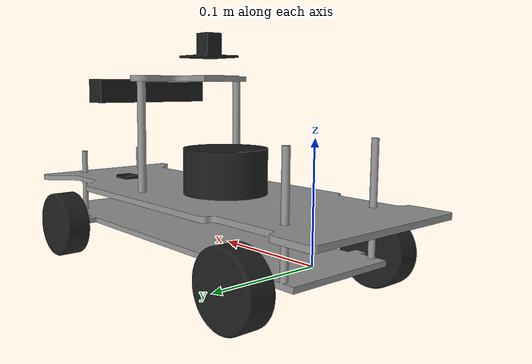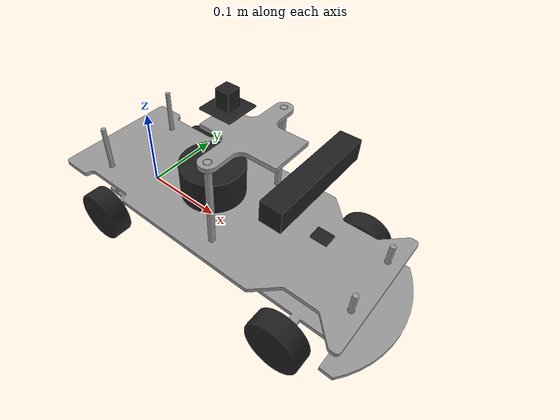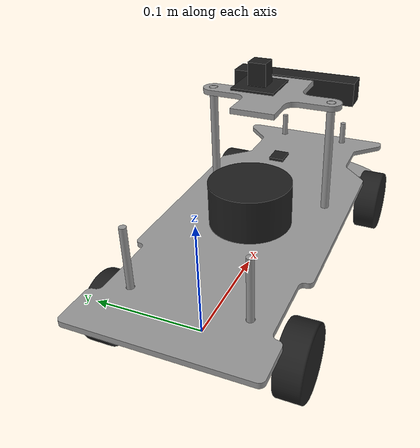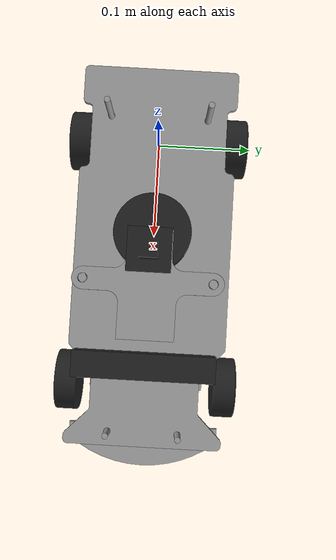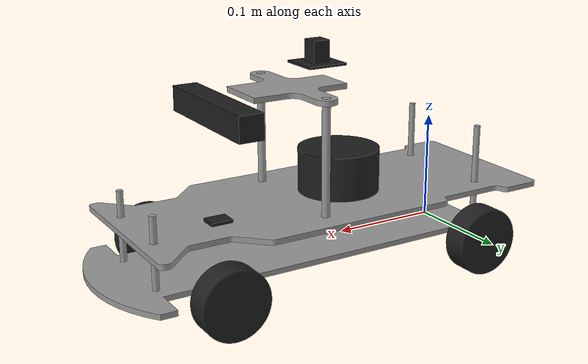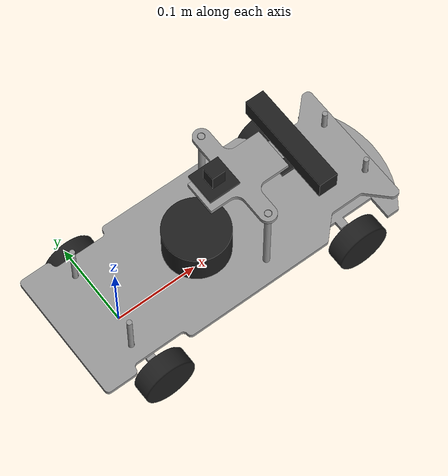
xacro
<?xml version="1.0"?>

<robot name="seat_car" xmlns:xacro="http://www.ros.org/wiki/xacro">

  <!-- Included URDF Files -->
  <xacro:include filename="$(find seat_car_description)/urdf/include/materials.xacro" />

  <xacro:include filename="$(find seat_car_description)/urdf/include/platform.xacro" />
  <xacro:include filename="$(find seat_car_description)/urdf/include/platform.gazebo" />

  <xacro:include filename="$(find seat_car_description)/urdf/include/sensors.xacro" />
  <xacro:include filename="$(find seat_car_description)/urdf/include/sensors.gazebo" />

  <!-- gazebo sensors -->
  <xacro:include filename="$(find seat_car_description)/urdf/include/sensors/imu.gazebo" />
  <xacro:include filename="$(find seat_car_description)/urdf/include/sensors/laser.gazebo" />
  <xacro:include filename="$(find seat_car_description)/urdf/include/sensors/front_rgbd_camera.gazebo" />
  <!-- only rgb, no depth-->
  <xacro:include filename="$(find seat_car_description)/urdf/include/sensors/top_camera.gazebo" />

</robot>

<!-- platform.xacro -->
<robot name="seat_car" xmlns:xacro="http://www.ros.org/wiki/xacro">

  <xacro:property name="PI" value="3.1415926535897931" />
  <xacro:property name="angle_limit" value="${PI/3.0}" />
  <xacro:property name="wheel_width" value="0.001" />

  <link name="base_link">
  </link>

  <link name="body">
    <inertial>
      <mass value="6" />
      <origin xyz="0.15971917 0.00000000 0.00197764" />
      <inertia ixx="0.0067970" ixy="0.0" ixz="-0.0008808"
               iyy="0.0784672" iyz="0.0"
               izz="0.0838770" />
    </inertial>
    <visual>
      <origin xyz="0 0 0" rpy="0 0 0" />
      <geometry>
        <mesh filename="package://seat_car_description/meshes/chassis.stl"/>
      </geometry>
      <material name="Grey" />
    </visual>
    <collision>
      <origin xyz="0 0 0" rpy="0 0 0" />
      <geometry>
        <mesh filename="package://seat_car_description/meshes/chassis.stl"/>
      </geometry>
    </collision>
  </link>

  <joint name="base_link_to_body" type="fixed">
    <origin xyz="0.0 0 0" rpy="0 0 0" />
    <parent link="base_link" />
    <child link="body" />
  </joint>

  <joint name="base_link_rear_left_wheel_joint" type="revolute">
    <origin xyz="0.0 -0.0825 0" rpy="${PI/2.0} 0 0" />
    <axis xyz="0 0 1" />
    <anchor xyz="0 0 0" />
    <parent link="base_link" />
    <child link="rear_left_wheel_link" />
    <limit lower="-1000000000000.0" upper="1000000000000.0" effort="3.0" velocity="124"/>
  </joint>

  <transmission name="tran_rear_left">
    <type>transmission_interface/SimpleTransmission</type>
    <joint name="base_link_rear_left_wheel_joint">
      <hardwareInterface>hardware_interface/EffortJointInterface</hardwareInterface>
    </joint>
    <actuator name="rear_left_motor">
      <hardwareInterface>hardware_interface/EffortJointInterface</hardwareInterface>
      <mechanicalReduction>1</mechanicalReduction>
    </actuator>
  </transmission>

  <link name="rear_left_wheel_link">
    <inertial>
      <mass value="1" />
      <origin xyz="0 0 0" rpy="0 0 0" />
      <inertia  ixx="0.0002946" ixy="0.0" ixz="0.0"
                iyy="0.0002946" iyz="0.0"
                izz="0.000494" />
    </inertial>
    <visual>
      <origin xyz="0 0 0" rpy="0 0 0" />
      <geometry>
        <mesh filename="package://seat_car_description/meshes/wheel.stl"/>
      </geometry>
      <material name="Black" />
    </visual>
    <collision>
      <origin xyz="0 0 0" rpy="0 0 0" />
      <geometry>
        <cylinder radius="0.0315" length="${wheel_width}"/>
      </geometry>
    </collision>
  </link>

  <joint name="base_link_rear_right_wheel_joint" type="revolute">
    <origin xyz="0.0 0.0825 0" rpy="-${PI/2.0} 0 0" />
    <axis xyz="0 0 1" />
    <anchor xyz="0 0 0" />
    <parent link="base_link" />
    <child link="rear_right_wheel_link" />
    <limit lower="-1000000000000.0" upper="1000000000000.0" effort="3.0" velocity="124"/>
  </joint>

  <transmission name="tran_rear_right">
    <type>transmission_interface/SimpleTransmission</type>
    <joint name="base_link_rear_right_wheel_joint">
      <hardwareInterface>hardware_interface/EffortJointInterface</hardwareInterface>
    </joint>
    <actuator name="rear_right_motor">
      <hardwareInterface>hardware_interface/EffortJointInterface</hardwareInterface>
      <mechanicalReduction>1</mechanicalReduction>
    </actuator>
  </transmission>

  <link name="rear_right_wheel_link">
    <inertial>
      <mass value="1" />
      <origin xyz="0 0 0" rpy="0 0 0" />
      <inertia  ixx="0.0002946" ixy="0.0" ixz="0.0"
                iyy="0.0002946" iyz="0.0"
                izz="0.0004940" />
    </inertial>
    <visual>
      <origin xyz="0 0 0" rpy="0 0 0" />
      <geometry>
        <mesh filename="package://seat_car_description/meshes/wheel.stl"/>
      </geometry>
      <material name="Black" />
    </visual>
    <collision>
      <origin xyz="0 0 0" rpy="0 0 0" />
      <geometry>
        <cylinder radius="0.0315" length="${wheel_width}"/>
      </geometry>
    </collision>
  </link>

  <joint name="base_link_front_left_axel_joint" type="revolute">
    <origin xyz="0.260 -0.0825 0" rpy="${PI/2.0} 0 0" />
    <axis xyz="0 1 0" />
    <anchor xyz="0 0 0" />
    <parent link="base_link" />
    <child link="front_left_axel_link" />
    <limit lower="-${angle_limit}" upper="${angle_limit}" effort="9.6" velocity="5.3"/>
    <dynamics damping="0.2"/>
  </joint>

  <transmission name="tran_front_left_axel">
    <type>transmission_interface/SimpleTransmission</type>
    <joint name="base_link_front_left_axel_joint">
      <hardwareInterface>hardware_interface/EffortJointInterface</hardwareInterface>
    </joint>
    <actuator name="front_left_axel_motor">
      <hardwareInterface>hardware_interface/EffortJointInterface</hardwareInterface>
      <mechanicalReduction>1</mechanicalReduction>
    </actuator>
  </transmission>

  <link name="front_left_axel_link">
    <inertial>
      <mass value="0.001" />
      <origin xyz="0 0 0" rpy="0 0 0" />
      <inertia  ixx="0.00001" ixy="0.0" ixz="0.0"
                iyy="0.00001" iyz="0.0"
                izz="0.00001" />
    </inertial>
  </link>

  <joint name="front_left_axel_front_left_wheel_joint" type="revolute">
    <origin xyz="0.0 0.0 0" rpy="0 0 0" />
    <axis xyz="0 0 1" />
    <anchor xyz="0 0 0" />
    <parent link="front_left_axel_link" />
    <child link="front_left_wheel_link" />
    <limit lower="-1000000000000.0" upper="1000000000000.0" effort="3.0" velocity="124"/>
  </joint>

  <transmission name="tran_front_left_wheel">
    <type>transmission_interface/SimpleTransmission</type>
    <joint name="front_left_axel_front_left_wheel_joint">
      <hardwareInterface>hardware_interface/EffortJointInterface</hardwareInterface>
    </joint>
    <actuator name="front_left_wheel_motor">
      <hardwareInterface>hardware_interface/EffortJointInterface</hardwareInterface>
      <mechanicalReduction>1</mechanicalReduction>
    </actuator>
  </transmission>

  <link name="front_left_wheel_link">
    <inertial>
      <mass value="1" />
      <origin xyz="0 0 0" rpy="0 0 0" />
      <inertia  ixx="0.0002946" ixy="0.0" ixz="0.0"
                iyy="0.0002946" iyz="0.0"
                izz="0.0004940" />
    </inertial>
    <visual>
      <origin xyz="0 0 0" rpy="0 0 0" />
      <geometry>
        <mesh filename="package://seat_car_description/meshes/wheel.stl"/>
      </geometry>
      <material name="Black" />
    </visual>
    <collision>
      <origin xyz="0 0 0" rpy="0 0 0" />
      <geometry>
        <cylinder radius="0.0315" length="${wheel_width}"/>
      </geometry>
    </collision>
  </link>

  <joint name="base_link_front_right_axel_joint" type="revolute">
    <origin xyz="0.260 0.0825 0" rpy="-${PI/2.0} 0 0" />
    <axis xyz="0 1 0" />
    <anchor xyz="0 0 0" />
    <parent link="base_link" />
    <child link="front_right_axel_link" />
    <limit lower="-${angle_limit}" upper="${angle_limit}" effort="9.6" velocity="5.3"/>
    <dynamics damping="0.2"/>
  </joint>

  <transmission name="tran_front_right_axel">
    <type>transmission_interface/SimpleTransmission</type>
    <joint name="base_link_front_right_axel_joint">
      <hardwareInterface>hardware_interface/EffortJointInterface</hardwareInterface>
    </joint>
    <actuator name="front_right_axel_motor">
      <hardwareInterface>hardware_interface/EffortJointInterface</hardwareInterface>
      <mechanicalReduction>1</mechanicalReduction>
    </actuator>
  </transmission>

  <link name="front_right_axel_link">
    <inertial>
      <mass value="0.001" />
      <origin xyz="0 0 0" rpy="0 0 0" />
      <inertia  ixx="0.00001" ixy="0.0" ixz="0.0"
                iyy="0.00001" iyz="0.0"
                izz="0.00001" />
    </inertial>
  </link>

  <joint name="front_right_axel_front_right_wheel_joint" type="continuous">
    <origin xyz="0.0 0.0 0" rpy="0 0 0" />
    <axis xyz="0 0 1" />
    <anchor xyz="0 0 0" />
    <parent link="front_right_axel_link" />
    <child link="front_right_wheel_link" />
    <limit lower="-1000000000000.0" upper="1000000000000.0" effort="3.0" velocity="124"/>
  </joint>

  <transmission name="tran_front_right_wheel">
    <type>transmission_interface/SimpleTransmission</type>
    <joint name="front_right_axel_front_right_wheel_joint">
      <hardwareInterface>hardware_interface/EffortJointInterface</hardwareInterface>
    </joint>
    <actuator name="front_right_wheel_motor">
      <hardwareInterface>hardware_interface/EffortJointInterface</hardwareInterface>
      <mechanicalReduction>1</mechanicalReduction>
    </actuator>
  </transmission>

  <link name="front_right_wheel_link">
    <inertial>
      <mass value="1" />
      <origin xyz="0 0 0" rpy="0 0 0" />
      <inertia  ixx="0.0002946" ixy="0.0" ixz="0.0"
                iyy="0.0002946" iyz="0.0"
                izz="0.0004940" />
    </inertial>
    <visual>
      <origin xyz="0 0 0" rpy="0 0 0" />
      <geometry>
        <mesh filename="package://seat_car_description/meshes/wheel.stl"/>
      </geometry>
      <material name="Black" />
    </visual>
    <collision>
      <origin xyz="0 0 0" rpy="0 0 0" />
      <geometry>
        <cylinder radius="0.0315" length="${wheel_width}"/>
      </geometry>
    </collision>
  </link>

</robot>

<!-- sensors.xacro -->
<robot name="seat_car" xmlns:xacro="http://www.ros.org/wiki/xacro">

  <!-- Included URDF Files -->

  <xacro:property name="PI" value="3.1415926535897931" />

  <link name="sensor_board">
    <inertial>
      <mass value="6" />
      <origin xyz="0.12043628 0.00000000 0.00171950" rpy="0 0 0"/>
      <inertia ixx="0.0123739" ixy="0.0" ixz="0.0003463"
               iyy="0.0711051" iyz="0.0"
               izz="0.0820107" />
    </inertial>
    <visual>
      <origin xyz="0.0 0.0 0.0" rpy="0 0 0"/>
      <geometry>
        <mesh filename="package://seat_car_description/meshes/sensor_board.stl" />
      </geometry>
      <material name="Grey" />
    </visual>
    <collision>
      <origin xyz="0.0 0.0 0.0" rpy="0 0 0"/>
      <geometry>
        <mesh filename="package://seat_car_description/meshes/sensor_board.stl" />
      </geometry>
    </collision>
  </link>

  <joint name="joint_base_link_to_sensor_board" type="fixed" >
    <parent link="base_link"/>
    <child link="sensor_board"/>
    <origin xyz="0 0 0.0415" rpy="0 0 0"/>
  </joint>

  <link name="camera_board">
    <inertial>
      <mass value="0.6000000" />
      <origin xyz="0.04901990 0.00000000 0.00000000" rpy="0 0 0"/>
      <inertia ixx="0.0003816" ixy="0.0" ixz="0.0"
               iyy="0.0003420" iyz="0.0"
               izz="0.0007211" />
    </inertial>
    <visual>
      <origin xyz="0.0 0.0 0.0" rpy="0 0 0"/>
      <geometry>
        <mesh filename="package://seat_car_description/meshes/camera_board.stl" />
      </geometry>
      <material name="Grey" />
    </visual>
    <collision>
      <origin xyz="0.0 0.0 0.0" rpy="0 0 0"/>
      <geometry>
        <mesh filename="package://seat_car_description/meshes/camera_board.stl" />
      </geometry>
    </collision>
  </link>

  <joint name="joint_sensor_board_to_camera_board" type="fixed" >
    <parent link="sensor_board"/>
    <child link="camera_board"/>
    <origin xyz="0.109 0 0.105" rpy="0 0 0"/>
  </joint>

  <!--*               Sensors                         *-->

  <!-- IMU -->
  <link name="imu">
    <inertial>
      <mass value="0.0200000" />
      <origin xyz="0.00000000 0.00000000 0.00150000" rpy="0 0 0"/>
      <inertia ixx="0.0000007" ixy="0.0" ixz="0.0"
               iyy="0.0000004" iyz="0.0"
               izz="0.0000011" />
    </inertial>
    <visual>
      <origin xyz="0 0 0" rpy="0 0 0"/>
      <geometry>
        <mesh filename="package://seat_car_description/meshes/IMU.stl" />
      </geometry>
      <material name="Black" />
    </visual>
    <collision>
      <origin xyz="0 0 0" rpy="0 0 0"/>
      <geometry>
        <mesh filename="package://seat_car_description/meshes/IMU.stl" />
      </geometry>
    </collision>
  </link>

  <joint name="joint_sensor_board_to_imu" type="fixed" >
    <parent link="sensor_board"/>
    <child link="imu"/>
    <origin xyz="0.239 0.02 0.0025" rpy="0 0 ${PI/2}"/>
  </joint>

  <!-- RP_LIDAR -->
  <link name="laser">
    <inertial>
      <mass value="1.8362923" />
      <origin xyz="0.0000000 0.0000000 -0.01040000" rpy="0 0 0"/>
      <inertia ixx="0.0009124" ixy="0.0" ixz="0.0"
               iyy="0.0009124" iyz="0.0"
               izz="0.0013154" />
    </inertial>
    <visual>
      <origin xyz="0 0 0" rpy="0 0 0"/>
      <geometry>
        <mesh filename="package://seat_car_description/meshes/RP-LIDAR.stl" />
      </geometry>
      <material name="Black" />
    </visual>
    <collision>
      <origin xyz="0 0 0" rpy="0 0 0"/>
      <geometry>
        <mesh filename="package://seat_car_description/meshes/RP-LIDAR.stl" />
      </geometry>
    </collision>
  </link>

  <joint name="joint_sensor_board_to_laser" type="fixed" >
    <parent link="sensor_board"/>
    <child link="laser"/>
    <origin xyz="0.10445 0 0.0333" rpy="0 0 -${PI}"/>
  </joint>

  <!-- top camera -->

  <link name="top_camera">
    <inertial>
      <mass value="0.1600000" />
      <origin xyz="0.00000000 0.00000000 -0.01396703" rpy="0 0 0"/>
      <inertia ixx="0.0000170" ixy="0.0" ixz="0.0"
               iyy="0.0000170" iyz="0.0"
               izz="0.0000183" />
    </inertial>
    <visual>
      <origin xyz="0 0 0" rpy="0 ${PI/2} 0"/>
      <geometry>
        <mesh filename="package://seat_car_description/meshes/gps_camera.stl" />
      </geometry>
      <material name="Black" />
    </visual>
    <collision>
      <origin xyz="0 0 0" rpy="0 ${PI/2} 0"/>
      <geometry>
        <mesh filename="package://seat_car_description/meshes/gps_camera.stl" />
      </geometry>
    </collision>
  </link>

  <joint name="joint_camera_board_to_top_camera" type="fixed" >
    <parent link="camera_board"/>
    <child link="top_camera"/>
    <origin xyz="0.019 0 0.0405" rpy="0 -${PI/2} ${PI}"/>
  </joint>

  <link name="top_camera_optical">
  </link>

  <joint name="joint_top_camera_to_top_camera_optical" type="fixed" >
    <parent link="top_camera"/>
    <child link="top_camera_optical"/>
    <origin xyz="0.0 0 0.0" rpy="-${PI/2} 0 -${PI/2}"/>
  </joint>

  <!-- front camera -->
  <xacro:property name="front_camera_name" value="camera" />

  <link name="${front_camera_name}_link">
    <inertial>
      <mass value="1.3000000" />
      <origin xyz="0.00000000 0.00000000 -0.01150000" rpy="0 0 0"/>
      <inertia ixx="0.0017500" ixy="0.0" ixz="0.0"
               iyy="0.0001146" iyz="0.0"
               izz="0.0017500" />
    </inertial>
    <visual>
      <origin xyz="0 0 0" rpy="0 0 0"/>
      <geometry>
        <mesh filename="package://seat_car_description/meshes/creative_camera.stl" />
      </geometry>
      <material name="Black" />
    </visual>
    <collision>
      <origin xyz="0 0 0" rpy="0 0 0"/>
      <geometry>
        <mesh filename="package://seat_car_description/meshes/creative_camera.stl" />
      </geometry>
    </collision>
  </link>

  <joint name="joint_camera_board_to_${front_camera_name}_link" type="fixed" >
    <parent link="camera_board"/>
    <child link="${front_camera_name}_link"/>
    <origin xyz="0.119 0 0.0" rpy="0 0 0"/>
  </joint>

  <link name="${front_camera_name}_rgb_optical_frame">
  </link>

  <joint name="joint_${front_camera_name}_link_to_${front_camera_name}_rgb_optical_frame" type="fixed" >
    <parent link="${front_camera_name}_link"/>
    <child link="${front_camera_name}_rgb_optical_frame"/>
    <origin xyz="0 0 0" rpy="-${PI/2} 0 -${PI/2}"/>
  </joint>

</robot>

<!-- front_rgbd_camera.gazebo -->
<robot>

  <property name="front_camera_name" value="camera" />
  <property name="rate" value="5.0" />

  <gazebo reference="${front_camera_name}_link">
    <material>Gazebo/Black</material>
  </gazebo>

  <gazebo reference="${front_camera_name}_rgb_optical_frame">
    <material>Gazebo/Black</material>
  </gazebo>

  <gazebo reference="${front_camera_name}_link">
    <sensor type="depth" name="${front_camera_name}">
      <always_on>1</always_on>
      <visualize>true</visualize>
      <update_rate>${rate}</update_rate>
      <camera>
        <horizontal_fov>0.83</horizontal_fov>
        <image>
          <width>640</width>
          <height>480</height>
          <format>R8G8B8</format>
        </image>
        <depth_camera>
        </depth_camera>
        <clip>
          <near>0.2</near>
          <far>50.0</far>
        </clip>
        <noise>
          <type>gaussian</type>
          <mean>0.0</mean>
          <stddev>0.007</stddev>
        </noise>
      </camera>
      <plugin name="${front_camera_name}_controller" filename="libgazebo_ros_openni_kinect.so">
        <alwaysOn>true</alwaysOn>
        <updateRate>${rate}</updateRate>
        <cameraName>${front_camera_name}</cameraName>
        <frameName>${front_camera_name}_rgb_optical_frame</frameName>
        <imageTopicName>rgb/image_raw</imageTopicName>
        <cameraInfoTopicName>rgb/camera_info</cameraInfoTopicName>
        <depthImageTopicName>depth/image_raw</depthImageTopicName>
        <pointCloudTopicName>depth/points</pointCloudTopicName>
        <depthImageCameraInfoTopicName>depth/camera_info</depthImageCameraInfoTopicName>
        <pointCloudCutoff>0.4</pointCloudCutoff>
        <hackBaseline>0.007</hackBaseline>
        <CxPrime>0.0</CxPrime>
        <Cx>0.0</Cx>
        <Cy>0.0</Cy>
        <focalLength>0.0</focalLength>
        <noise>
          <type>gaussian</type>
          <mean>0.0</mean>
          <stddev>0.01</stddev>
        </noise>
      </plugin>
    </sensor>
  </gazebo>

</robot>

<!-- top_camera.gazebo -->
<robot>

  <property name="top_camera_name" value="top_camera" />
  <property name="rate" value="5.0" />

  <gazebo reference="${top_camera_name}">
    <material>Gazebo/Black</material>
  </gazebo>

  <gazebo reference="${top_camera_name}_optical">
    <material>Gazebo/Black</material>
  </gazebo>

  <gazebo reference="${top_camera_name}">
    <sensor type="wideanglecamera" name="${top_camera_name}">
      <camera>
        <horizontal_fov>3.14</horizontal_fov>
        <image>
          <width>1920</width>
          <height>1080</height>
        </image>
        <clip>
          <near>0.1</near>
          <far>100</far>
        </clip>
        <lens>
          <type>stereographic</type>
          <scale_to_hfov>true</scale_to_hfov>
          <cutoff_angle>1.5707</cutoff_angle>
          <env_texture_size>512</env_texture_size>
        </lens>
      </camera>
      <always_on>1</always_on>
      <update_rate>${rate}</update_rate>
      <plugin name="${top_camera_name}_controller" filename="libgazebo_ros_camera.so">
        <alwaysOn>true</alwaysOn>
        <updateRate>${rate}</updateRate>
        <cameraName>usb_cam</cameraName>
        <imageTopicName>image_raw</imageTopicName>
        <cameraInfoTopicName>camera_info</cameraInfoTopicName>
        <frameName>${top_camera_name}_optical</frameName>
        <hackBaseline>0.07</hackBaseline>
        <distortionK1>-0.241471</distortionK1>
        <distortionK2>0.038162</distortionK2>
        <distortionK3>0.000000</distortionK3>
        <distortionT1>0.005967</distortionT1>
        <distortionT2>-0.002110</distortionT2>
      </plugin>
    </sensor>

  </gazebo>

</robot>
